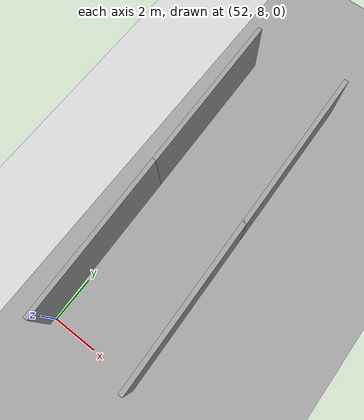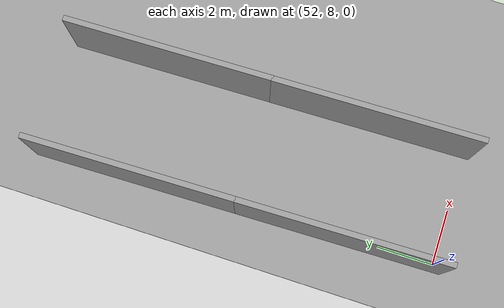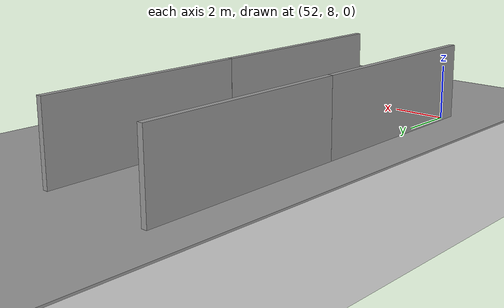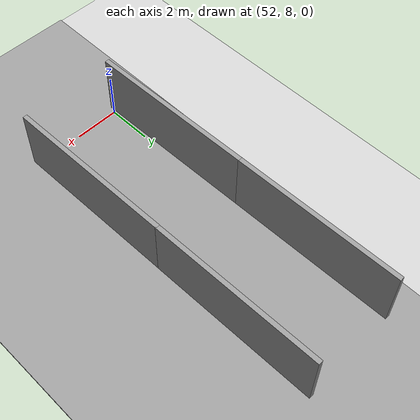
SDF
<sdf version="1.7">
 <world name="default">
  <model name="ground_plane">
   <static>1</static>
   <link name="link">
    <collision name="collision">
     <geometry><plane><normal>0 0 1</normal><size>100 100</size></plane></geometry>
     <surface><friction><ode><mu>100</mu><mu2>50</mu2></ode></friction></surface>
    </collision>
    <visual name="visual">
     <cast_shadows>0</cast_shadows>
     <geometry><plane><normal>0 0 1</normal><size>100 100</size></plane></geometry>
     <material>
      <script><uri>file://media/materials/scripts/gazebo.material</uri><name>Gazebo/Grey</name></script>
     </material>
    </visual>
   </link>
  </model>
  <model name="ground_plane_0">
   <static>1</static>
   <link name="link">
    <collision name="collision">
     <geometry><plane><normal>0 0 1</normal><size>100 100</size></plane></geometry>
     <surface><friction><ode><mu>100</mu><mu2>50</mu2></ode></friction></surface>
    </collision>
    <visual name="visual">
     <cast_shadows>0</cast_shadows>
     <geometry><plane><normal>0 0 1</normal><size>100 100</size></plane></geometry>
     <material>
      <script><uri>file://media/materials/scripts/gazebo.material</uri><name>Gazebo/Grey</name></script>
     </material>
    </visual>
   </link>
   <pose>99.9426 -0.056054 0 0 -0 0</pose>
  </model>
  <model name="grey_wall_clone_8_clone">
   <static>1</static>
   <link name="link">
    <pose>0 0 1.4 0 -0 0</pose>
    <collision name="collision"><geometry><box><size>7.5 0.2 2.8</size></box></geometry></collision>
    <visual name="visual">
     <cast_shadows>0</cast_shadows>
     <geometry><box><size>7.5 0.2 2.8</size></box></geometry>
     <material>
      <script>
       <uri>model://grey_wall/materials/scripts</uri>
       <uri>model://grey_wall/materials/textures</uri>
       <name>vrc/grey_wall</name>
      </script>
     </material>
    </visual>
   </link>
   <pose>51.7575 11.454 0 0 -0 1.59137</pose>
  </model>
  <model name="grey_wall_clone_8_clone_0">
   <static>1</static>
   <link name="link">
    <pose>0 0 1.4 0 -0 0</pose>
    <collision name="collision"><geometry><box><size>7.5 0.2 2.8</size></box></geometry></collision>
    <visual name="visual">
     <cast_shadows>0</cast_shadows>
     <geometry><box><size>7.5 0.2 2.8</size></box></geometry>
     <material>
      <script>
       <uri>model://grey_wall/materials/scripts</uri>
       <uri>model://grey_wall/materials/textures</uri>
       <name>vrc/grey_wall</name>
      </script>
     </material>
    </visual>
   </link>
   <pose>51.6047 18.9221 0 0 -0 1.59137</pose>
  </model>
  <model name="grey_wall_clone_8_clone_10">
   <static>1</static>
   <link name="link">
    <pose>0 0 1.4 0 -0 0</pose>
    <collision name="collision"><geometry><box><size>7.5 0.2 2.8</size></box></geometry></collision>
    <visual name="visual">
     <cast_shadows>0</cast_shadows>
     <geometry><box><size>7.5 0.2 2.8</size></box></geometry>
     <material>
      <script>
       <uri>model://grey_wall/materials/scripts</uri>
       <uri>model://grey_wall/materials/textures</uri>
       <name>vrc/grey_wall</name>
      </script>
     </material>
    </visual>
   </link>
   <pose>56.0589 11.5382 0 0 -0 1.59137</pose>
  </model>
  <model name="grey_wall_clone_8_clone_11">
   <static>1</static>
   <link name="link">
    <pose>0 0 1.4 0 -0 0</pose>
    <collision name="collision"><geometry><box><size>7.5 0.2 2.8</size></box></geometry></collision>
    <visual name="visual">
     <cast_shadows>0</cast_shadows>
     <geometry><box><size>7.5 0.2 2.8</size></box></geometry>
     <material>
      <script>
       <uri>model://grey_wall/materials/scripts</uri>
       <uri>model://grey_wall/materials/textures</uri>
       <name>vrc/grey_wall</name>
      </script>
     </material>
    </visual>
   </link>
   <pose>55.9095 18.9862 0 0 -0 1.59137</pose>
  </model>
 </world>
</sdf>
